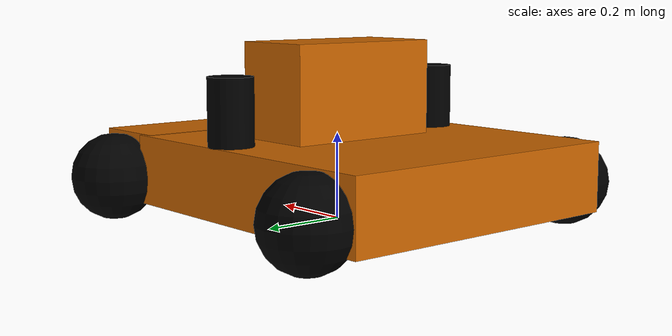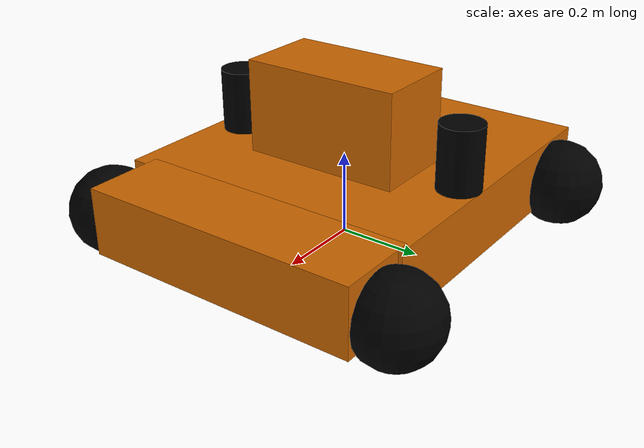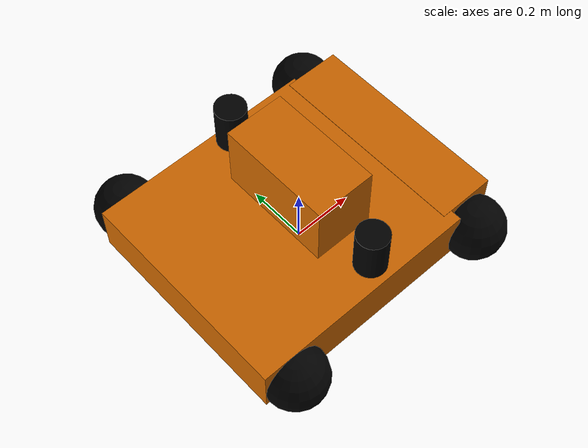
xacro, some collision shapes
<?xml version="1.0"?>
<robot name="velmobil" xmlns:xacro="http://www.ros.org/wiki/xacro" xmlns:gz="http://gazebosim.org/schema">

  <xacro:arg name="floating" default="false"/>
  <xacro:arg name="roll_yaw" default="false"/>
  <xacro:arg name="realsense" default="false"/>

  <xacro:include filename="$(find velmobil_description)/urdf/properties.urdf.xacro" />
  <xacro:include filename="$(find velmobil_description)/urdf/macros.urdf.xacro" />

  <link name="base_footprint" />
  <link name="base_link">
    <visual>
      <geometry>
        <mesh filename="file://$(find velmobil_description)/models/base.dae" />
      </geometry>
      <material name="orange"/>
    </visual>
    <collision>
      <origin xyz="0 -0.011 0.001" rpy="0 0 0"/>
      <geometry>
        <box size="${base_link_width} ${base_link_height} ${base_link_depth}"/>
      </geometry>
    </collision>
    <inertial>
      <origin xyz="0 0 0.5" rpy="0 0 0"/>
      <mass value="${base_mass}"/>
      <inertia ixx="0.13" ixy="0.0" ixz="0.0" iyy="0.42" iyz="0.0" izz="0.48"/>
    </inertial>
  </link>
  <link name="front_link">
      <visual>
          <geometry>
              <mesh filename="file://$(find velmobil_description)/models/front.dae"/>
          </geometry>
          <material name="orange"/>
      </visual>
      <collision>
          <origin xyz="0.0 0.003 0.002" rpy="0.0 0.0 1.57"/>
          <geometry>
              <box size="0.6736 0.1906 0.1600"/>
          </geometry>
      </collision>
      <inertial>
          <mass value="${front_mass}"/>
          <inertia ixx="0.7351" ixy="0.0" ixz="0.0" iyy="0.0771" iyz="0.0" izz="0.7483"/>
      </inertial>
  </link>
  <joint name="footprint_joint" type="fixed">
      <origin xyz="${base_center_offset} 0 ${base_link_center_offset + 0.03}" rpy="0 0 0"/>
      <parent link="base_footprint"/>
      <child link="base_link"/>
  </joint>
  <joint name="front_joint" type="fixed">
      <origin xyz="${front_base_offset} 0 0" rpy="0 0 0"/>
      <parent link="base_link"/>
      <child link="front_link"/>
  </joint>

  <xacro:wheel prefix="front_left" x="${front_base_offset}" y="${wheel_y_offset}"/>
  <xacro:wheel prefix="front_right" x="${front_base_offset}" y="${-wheel_y_offset}"/>
  <xacro:wheel prefix="rear_left" x="${wheel_r_base_x_offset}" y="${wheel_y_offset}"/>
  <xacro:wheel prefix="rear_right" x="${wheel_r_base_x_offset}" y="${-wheel_y_offset}"/>

  <xacro:wheel_friction prefix="front_left"/>
  <xacro:wheel_friction prefix="front_right"/>
  <xacro:wheel_friction prefix="rear_left"/>
  <xacro:wheel_friction prefix="rear_right"/>

  <xacro:lidar name="left" side="1" yaw="0.0" />
  <xacro:lidar name="right" side="-1" yaw="-3.141592" />

  <xacro:imu />
  <xacro:ground_truth/>

  <link name="camera_link">
    <collision>
        <origin xyz="${-base_center_offset} 0 0" rpy="0 0 0"/>
        <geometry>
            <box size="0.1 0.2 0.2"/>
        </geometry>
    </collision>
    <visual>
        <origin xyz="${-base_center_offset} 0 0" rpy="0 0 0"/>
        <geometry>
            <box size="0.2 0.38 0.3"/>
        </geometry>
        <material name="orange"/>
    </visual>
    <inertial>
        <mass value="5.0"/>
        <inertia ixx="0.1" ixy="0.0" ixz="0.0"
                 iyy="0.1" iyz="0.0" izz="0.1"/>
    </inertial>
  </link>

  <joint name="base_camera_link" type="fixed">
      <origin xyz="0 0 0.15" rpy="0 0 0"/>
      <parent link="base_link"/>
      <child link="camera_link"/>
  </joint>

  <xacro:if value="$(arg realsense)">
    <xacro:front_real_sense />
    <xacro:back_real_sense />
  </xacro:if>

  <ros2_control name="GazeboSimSystem" type="system">
    <hardware><plugin>gz_ros2_control/GazeboSimSystem</plugin></hardware>
    <xacro:wheel_joint_interface name="front_left_wheel_joint"/>
    <xacro:wheel_joint_interface name="front_right_wheel_joint"/>
    <xacro:wheel_joint_interface name="rear_left_wheel_joint"/>
    <xacro:wheel_joint_interface name="rear_right_wheel_joint"/>

    <xacro:yaw_joint_interface name="front_left_yaw_joint"/>
    <xacro:yaw_joint_interface name="front_right_yaw_joint"/>
    <xacro:yaw_joint_interface name="rear_left_yaw_joint"/>
    <xacro:yaw_joint_interface name="rear_right_yaw_joint"/>
  </ros2_control>

  <xacro:if value="$(arg floating)">
    <gazebo>
      <plugin filename="gz_ros2_control-system" name="gz_ros2_control::GazeboSimROS2ControlPlugin">
        <parameters>$(find velmobil_description)/control_config/floating_velmobil.yaml</parameters>
      </plugin>
    </gazebo>
  </xacro:if>
  <xacro:if value="$(arg roll_yaw)">
    <gazebo>
      <plugin filename="gz_ros2_control-system" name="gz_ros2_control::GazeboSimROS2ControlPlugin">
        <parameters>$(find velmobil_description)/control_config/roll_yaw_velmobil.yaml</parameters>
      </plugin>
    </gazebo>
  </xacro:if>

</robot>

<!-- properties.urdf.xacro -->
<robot name="velmobil" xmlns:xacro="http://www.ros.org/wiki/xacro" xmlns:gz="http://gazebosim.org/schema">

    <material name="orange"><color rgba="0.8 0.4 0.0 1.0"/></material>
    <material name="black"><color rgba="0 0 0 1.0"/></material>
    <material name="white"><color rgba="1 1 1 1.0"/></material>

    <xacro:property name="base_mass" value="100"/>
    <xacro:property name="front_mass" value="30"/>
    <xacro:property name="wheel_mass" value="0.1"/>

    <xacro:property name="base_link_width" value="0.7604" />
    <xacro:property name="base_link_height" value="0.7203" />
    <xacro:property name="base_link_depth" value="0.1598" />

    <xacro:property name="base_z_offset" value="0.1035"/>
    <xacro:property name="base_link_center_offset" value="${base_z_offset - 0.019}"/>
    <xacro:property name="base_center_offset" value="-0.081"/>
    <xacro:property name="front_base_offset" value="0.445"/>
    <xacro:property name="wheel_radius" value="0.1016"/>
    <xacro:property name="lidar_l_centre_offset" value="0 0.3 0.176"/>
    <xacro:property name="lidar_l_orientation" value="0 0 0"/>
    <xacro:property name="lidar_r_centre_offset" value="0 -0.3 0.176"/>
    <xacro:property name="lidar_y_offset" value="0.3"/>
    <xacro:property name="lidar_r_orientation" value="0 0 -3.141592"/>
    <xacro:property name="imu_centre_ofset" value="0 0 0"/>
    <xacro:property name="wheel_y_offset" value="0.38"/>
    <xacro:property name="wheel_center_x_offset" value="0.36"/>
    <xacro:property name="wheel_r_base_x_offset" value="${-wheel_center_x_offset + 0.081}"/>
    <xacro:property name="wheel_f_front_x_offset" value="${0.445 - 0.081 - wheel_center_x_offset}"/>
    <xacro:property name="wheel_base_offset" value="0.05"/>
    <xacro:property name="lidar_radius" value="0.051"/>
    <xacro:property name="lidar_length" value="0.152"/>

</robot>

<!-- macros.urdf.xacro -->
<robot name="velmobil" xmlns:xacro="http://www.ros.org/wiki/xacro" xmlns:gz="http://gazebosim.org/schema">

    <xacro:macro name="wheel" params="prefix x y">

        <link name="${prefix}_yaw">
            <!-- useless, but urdf->sdf won't happen without mock inertia -->
            <inertial>
                <mass value="0.0001"/>
                <origin xyz="0 0 0" rpy="0 0 0"/>
                <inertia ixx="0.000001" ixy="0.0" ixz="0.0" iyy="0.000001" iyz="0.0" izz="0.000001"/>
            </inertial>
        </link>

        <link name="${prefix}_wheel">
            <collision>
                <origin xyz="0 0 0" rpy="0 0 0"/>
                <geometry><sphere radius="${wheel_radius}"/></geometry>
            </collision>
            <visual>
                <origin xyz="0 0 0" rpy="0 0 0"/>
                <geometry>
                    <sphere radius="${wheel_radius}"/>
                </geometry>
                <material name="black"/>
            </visual>
            <inertial>
                <mass value="${wheel_mass}"/>
                <inertia ixx="0.145" ixy="0.0" ixz="0.0" iyy="0.145" iyz="0.0" izz="0.125"/>
            </inertial>
        </link>

        <joint name="${prefix}_yaw_joint" type="revolute">
            <origin xyz="${x} ${y} -0.02" rpy="0 0 0"/>
            <parent link="base_link"/>
            <child link="${prefix}_yaw"/>
            <axis xyz="0 0 1"/>
            <limit lower="${-pi}" upper="${pi}" effort="100000" velocity="10000"/>
        </joint>

        <joint name="${prefix}_wheel_joint" type="continuous">
            <origin xyz="0 0 0" rpy="0 0 0"/>
            <parent link="${prefix}_yaw"/>
            <child link="${prefix}_wheel"/>
            <axis xyz="0 1 0"/>
            <dynamics damping="0.2"/>
        </joint>
    </xacro:macro>

    <xacro:macro name="camera_link_camera_joint" params="prefix">
        <joint name="${prefix}_camera_link_camera_joint" type="fixed">
            <origin xyz="0 0 0" rpy="0 0 0"/>
            <parent link="camera_link"/>
            <child link="${prefix}_rgbd_camera_frame"/>
        </joint>
    </xacro:macro>

    <xacro:macro name="wheel_friction" params="prefix">
        <gazebo reference="${prefix}_wheel">
            <collision>
                <surface>
                    <friction>
                        <ode>
                            <mu>1.0</mu>
                            <mu2>1.0</mu2>
                            <fdir1 gz:expressed_in="${prefix}_yaw">1 0 0</fdir1>
                            <slip1>0.0</slip1>
                            <slip2>0.0</slip2>
                        </ode>
                    </friction>
                    <contact>
                        <ode>
                            <kp>1000000.0</kp>
                            <kd>1.0</kd>
                            <min_depth>0.001</min_depth>
                        </ode>
                    </contact>
                </surface>
            </collision>
            <selfCollide>false</selfCollide>
        </gazebo>
    </xacro:macro>

    <xacro:macro name="wheel_joint_interface" params="name">
        <joint name="${name}">
            <command_interface name="velocity">
                <param name="min">-10000</param>
                <param name="max">10000</param>
            </command_interface>
            <state_interface name="position"/>
            <state_interface name="velocity"/>
        </joint>
    </xacro:macro>

    <xacro:macro name="yaw_joint_interface" params="name">
        <joint name="${name}">
            <command_interface name="position">
                <param name="min">${-pi}</param>
                <param name="max">${pi}</param>
            </command_interface>
            <state_interface name="position"/>
        </joint>
    </xacro:macro>

    <!-- TWO CAMERAS PARAMETERS ARE SET IN ORDER TO WORK MORE EFFECTIVELY IN SIMULATION -->
    <xacro:macro name="front_real_sense" params="">
        <joint name="front_rgbd_camera_joint" type="fixed">
            <origin xyz="${-base_center_offset + 0.1} 0 0.14" rpy="0 0 0"/>
            <parent link="camera_link"/>
            <child link="front_rgbd_camera_frame"/>
        </joint>
        <link name="front_rgbd_camera_frame">
        <visual>
            <origin xyz="0 0 0" rpy="0 0 0"/>
            <geometry>
            <mesh filename="file://$(find velmobil_description)/models/real_sense.dae" scale="1.0 1.0 1.0"/>
            </geometry>
            <material name="black">
            <color rgba="0.9 0.9 0.9 1.0"/>
            </material>
        </visual>
        </link>

        <gazebo reference="front_rgbd_camera_frame">
        <sensor name="front_rgbd_camera" type="rgbd_camera">
            <gz_frame_id>front_rgbd_camera_frame</gz_frame_id>
            <camera name="front_rgbd_camera_frame">
            <horizontal_fov>1.094321441</horizontal_fov>
            <image>
                <width>320</width>
                <height>180</height>
                <format>R8G8B8</format>
            </image>
            <clip>
                <near>0.4</near>
                <far>6.5</far>
            </clip>
            </camera>
            <always_on>1</always_on>
            <update_rate>10</update_rate>
            <visualize>0</visualize>
            <topic>front_depth_camera</topic>
        </sensor>
        </gazebo>
    </xacro:macro>

    <xacro:macro name="back_real_sense" params="">
        <joint name="back_rgbd_camera_joint" type="fixed">
            <origin xyz="${-base_center_offset - 0.1} 0 0.14" rpy="0 0 -3.14"/>
            <parent link="camera_link"/>
            <child link="back_rgbd_camera_frame"/>
        </joint>
        <link name="back_rgbd_camera_frame">
        <visual>
            <origin xyz="0 0 0" rpy="0 0 0"/>
            <geometry>
            <mesh filename="file://$(find velmobil_description)/models/real_sense.dae" scale="1.0 1.0 1.0"/>
            </geometry>
            <material name="black">
            <color rgba="0.9 0.9 0.9 1.0"/>
            </material>
        </visual>
        </link>

        <gazebo reference="back_rgbd_camera_frame">
        <sensor name="back_rgbd_camera" type="rgbd_camera">
            <gz_frame_id>back_rgbd_camera_frame</gz_frame_id>
            <camera name="back_rgbd_camera_frame">
            <horizontal_fov>1.094321441</horizontal_fov>
            <image>
                <width>320</width>
                <height>180</height>
                <format>R8G8B8</format>
            </image>
            <clip>
                <near>0.4</near>
                <far>6.5</far>
            </clip>
            </camera>
            <always_on>1</always_on>
            <update_rate>10</update_rate>
            <visualize>0</visualize>
            <topic>back_depth_camera</topic>
        </sensor>
        </gazebo>
    </xacro:macro>

    <xacro:macro name="lidar" params="name side yaw">
        <link name="${name}_lidar_link">
            <visual>
                <geometry>
                    <cylinder radius="${lidar_radius}" length="${lidar_length}"/>
                </geometry>
                <origin xyz="0 0 -0.02"/>
                <material name="black"/>
            </visual>
            <collision>
                <geometry>
                    <cylinder radius="${lidar_radius}" length="${lidar_length}"/>
                </geometry>
            </collision>
            <inertial>
                <mass value="0.1"/>
                <inertia ixx="0.00283314166" ixy="0.0" ixz="0.0" iyy="0.00283314166" iyz="0.0" izz="0.00143055"/>
            </inertial>
        </link>

        <joint name="${name}_lidar_base_joint" type="fixed">
            <parent link="base_link"/>
            <child link="${name}_lidar_link"/>
            <origin xyz="${-base_center_offset} ${side * lidar_y_offset} 0.176" rpy="0 0 ${yaw}"/>
        </joint>

        <gazebo reference="${name}_lidar_link">
            <sensor name="${name}_lidar_sensor" type="gpu_lidar">
                <gz_frame_id>${name}_lidar_link</gz_frame_id>
                <pose relative_to='${name}_lidar_link'>0 0 0 0 0 0</pose>
                <topic>/${name}/scan</topic>
                <update_rate>20</update_rate>
                <ray>
                    <scan>
                        <horizontal>
                            <!-- Lidar merger i tak scala z dokladnoscia do 1 stopnia wiec mozna zmniejszyc z 540 do 270 punktow -->
                            <samples>270</samples>
                            <resolution>1</resolution>
                            <min_angle>-0.7853982</min_angle>
                            <max_angle>3.926991</max_angle>
                        </horizontal>
                    </scan>
                    <range>
                        <min>0.06</min>
                        <max>5.0</max>
                        <resolution>0.01</resolution>
                    </range>
                    <noise>
                        <type>gaussian</type>
                        <mean>0.0</mean>
                        <stddev>0.012</stddev>
                    </noise>
                </ray>
                <always_on>1</always_on>
                <visualize>0</visualize>

            </sensor>
        </gazebo>
    </xacro:macro>

    <xacro:macro name="imu" params="">
        <link name="imu_link" />
        <joint name="imu_base_link" type="fixed">
            <parent link="base_link"/>
            <child link="imu_link"/>
            <origin xyz="0 0 0" rpy="0 0 0"/>
        </joint>

        <gazebo reference="imu_link">
            <sensor name="imu_sensor" type="imu">
                <gz_frame_id>imu_link</gz_frame_id>
                <pose relative_to='imu_link'>0 0 0 0 0 0</pose>
                <always_on>1</always_on>
                <update_rate>1</update_rate>
                <visualize>false</visualize>
                <imu>
                    <angular_velocity>
                        <x>
                            <noise type="gaussian">
                                <mean>0.0</mean>
                                <stddev>2e-4</stddev>
                                <bias_mean>0.0000075</bias_mean>
                                <bias_stddev>0.0000008</bias_stddev>
                            </noise>
                        </x>
                        <y>
                            <noise type="gaussian">
                                <mean>0.0</mean>
                                <stddev>2e-4</stddev>
                                <bias_mean>0.0000075</bias_mean>
                                <bias_stddev>0.0000008</bias_stddev>
                            </noise>
                        </y>
                        <z>
                            <noise type="gaussian">
                                <mean>0.0</mean>
                                <stddev>2e-4</stddev>
                                <bias_mean>0.0000075</bias_mean>
                                <bias_stddev>0.0000008</bias_stddev>
                            </noise>
                        </z>
                    </angular_velocity>
                    <linear_acceleration>
                        <x>
                            <noise type="gaussian">
                                <mean>0.0</mean>
                                <stddev>1.7e-2</stddev>
                                <bias_mean>0.1</bias_mean>
                                <bias_stddev>0.001</bias_stddev>
                            </noise>
                        </x>
                        <y>
                            <noise type="gaussian">
                                <mean>0.0</mean>
                                <stddev>1.7e-2</stddev>
                                <bias_mean>0.1</bias_mean>
                                <bias_stddev>0.001</bias_stddev>
                            </noise>
                        </y>
                        <z>
                            <noise type="gaussian">
                                <mean>0.0</mean>
                                <stddev>1.7e-2</stddev>
                                <bias_mean>0.1</bias_mean>
                                <bias_stddev>0.001</bias_stddev>
                            </noise>
                        </z>
                    </linear_acceleration>
                </imu>
                <topic>/imu/data</topic>
            </sensor>
        </gazebo>
    </xacro:macro>

    <xacro:macro name="ground_truth" params="topic:=/gt_position freq:=50">
        <gazebo>
            <plugin filename="gz-sim-odometry-publisher-system"
                    name="gz::sim::systems::OdometryPublisher">
            <odom_frame>odom</odom_frame>
            <robot_base_frame>base_link</robot_base_frame>
            <odom_topic>${topic}</odom_topic>
            <odom_publish_frequency>${freq}</odom_publish_frequency>
            <dimensions>3</dimensions>
            </plugin>
        </gazebo>
    </xacro:macro>

</robot>
